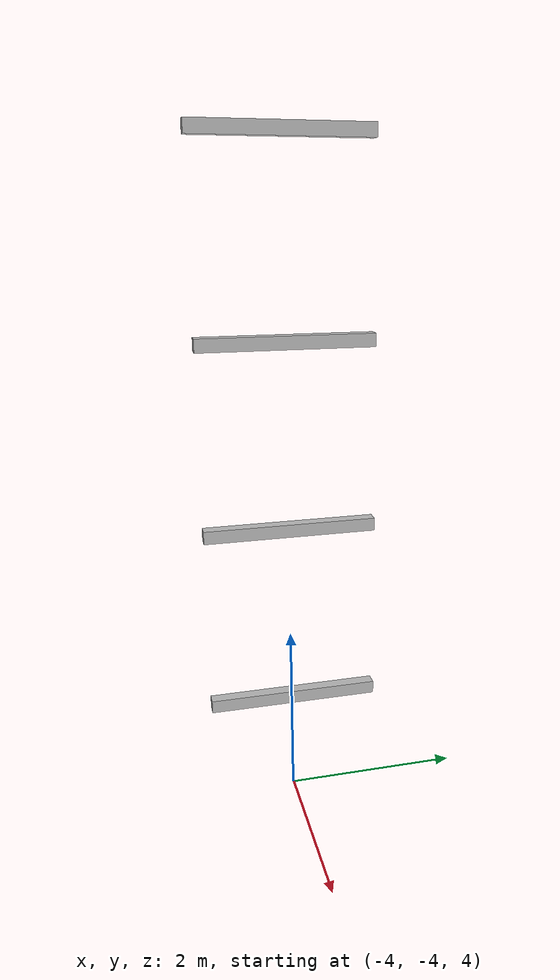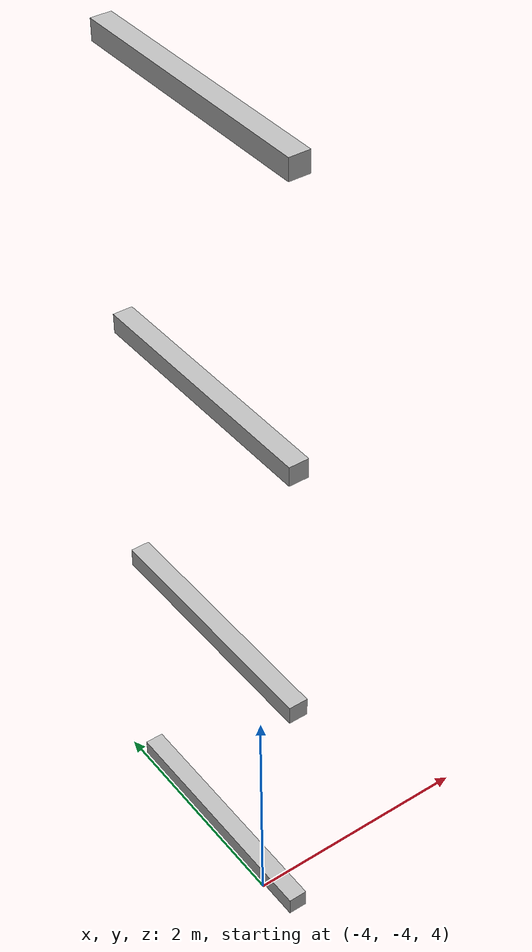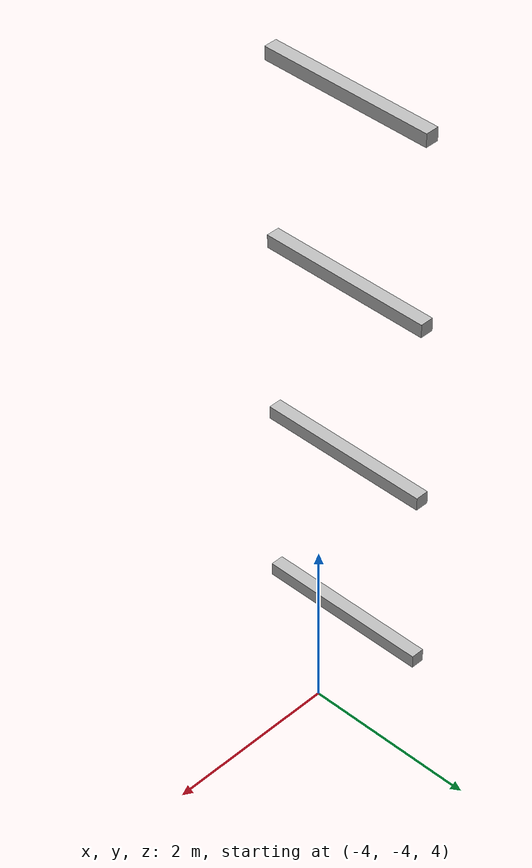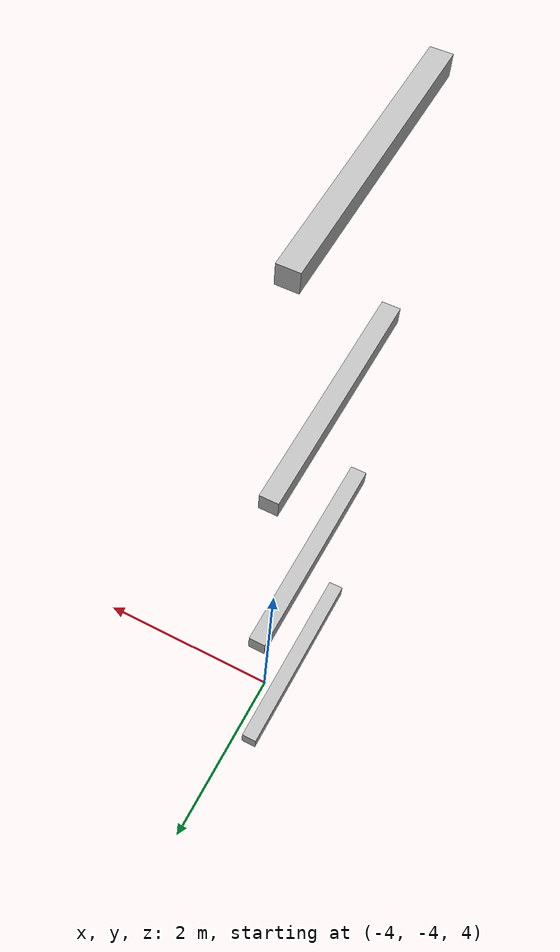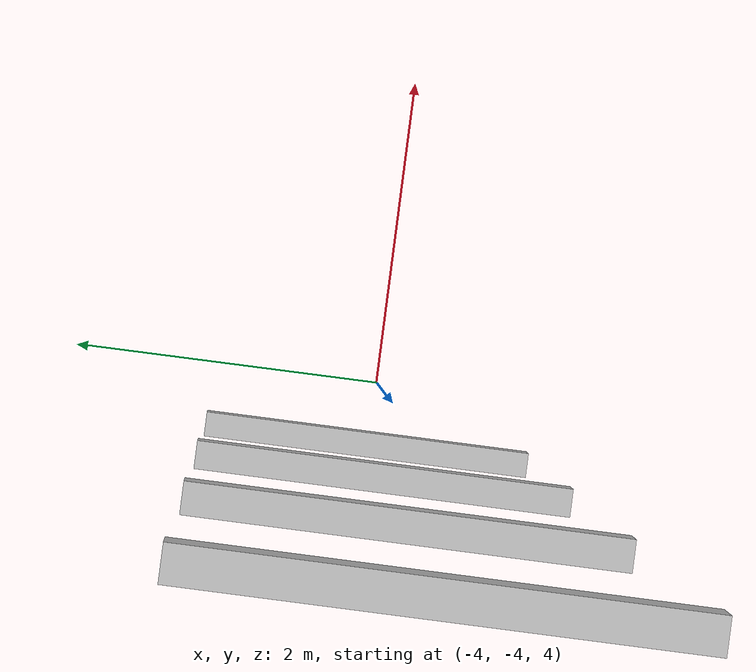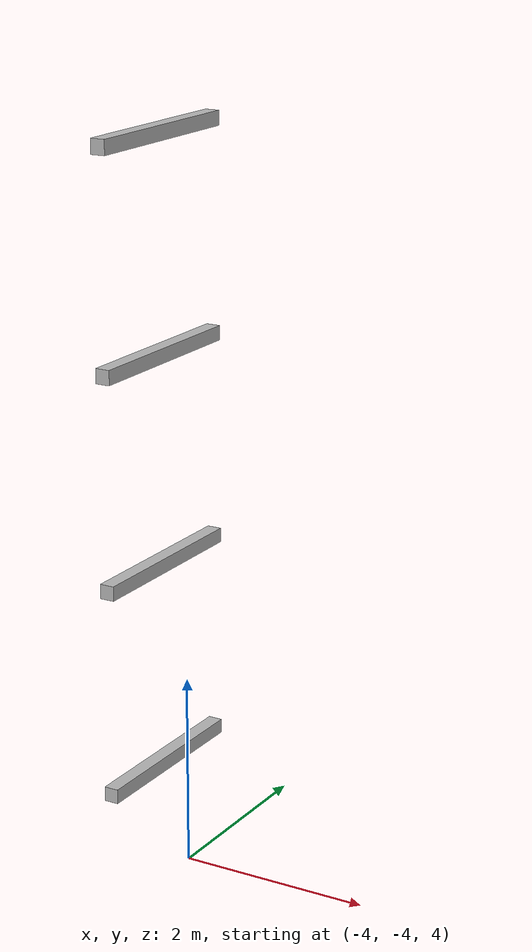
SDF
<sdf version="1.7">
 <world name="default">
  <model name="orthogonal_747_2.000.15_TS">
   <static>1</static>
   <link name="y_link_3_0_1">
    <inertial>
     <mass>1</mass>
     <inertia>
      <ixx>0.166667</ixx>
      <ixy>0</ixy>
      <ixz>0</ixz>
      <iyy>0.166667</iyy>
      <iyz>0</iyz>
      <izz>0.166667</izz>
     </inertia>
    </inertial>
    <pose>2.15 1.075 7.525 0 -0 0</pose>
    <visual name="visual_0">
     <laser_retro>2591</laser_retro>
     <geometry><box><size>0.15 1e-06 0.15</size></box></geometry>
     <material>
      <script><name>Gazebo/Grey</name><uri>file://media/materials/scripts/gazebo.material</uri></script>
      <shader type="pixel"><normal_map>__default__</normal_map></shader>
      <ambient>0.678 0.498 0.659 1</ambient>
      <diffuse>0.7 0.7 0.7 1</diffuse>
      <specular>0.01 0.01 0.01 1</specular>
      <emissive>0 0 0 1</emissive>
     </material>
     <pose>0 -1 0 0 -0 0</pose>
     <transparency>1</transparency>
    </visual>
    <visual name="visual_1">
     <laser_retro>2592</laser_retro>
     <geometry><box><size>0.15 1e-06 0.15</size></box></geometry>
     <material>
      <script><name>Gazebo/Grey</name><uri>file://media/materials/scripts/gazebo.material</uri></script>
      <shader type="pixel"><normal_map>__default__</normal_map></shader>
      <ambient>0.447 0.624 0.812 1</ambient>
      <diffuse>0.7 0.7 0.7 1</diffuse>
      <specular>0.01 0.01 0.01 1</specular>
      <emissive>0 0 0 1</emissive>
     </material>
     <pose>0 1 0 0 -0 0</pose>
     <transparency>1</transparency>
    </visual>
    <visual name="visual_2">
     <laser_retro>2593</laser_retro>
     <geometry><box><size>0.15 2 1e-06</size></box></geometry>
     <material>
      <script><name>Gazebo/Grey</name><uri>file://media/materials/scripts/gazebo.material</uri></script>
      <shader type="pixel"><normal_map>__default__</normal_map></shader>
      <ambient>0.988 0.686 0.243 1</ambient>
      <diffuse>0.7 0.7 0.7 1</diffuse>
      <specular>0.01 0.01 0.01 1</specular>
      <emissive>0 0 0 1</emissive>
     </material>
     <pose>0 0 -0.075 0 -0 0</pose>
     <transparency>1</transparency>
    </visual>
    <visual name="visual_3">
     <laser_retro>2594</laser_retro>
     <geometry><box><size>1e-06 2 0.15</size></box></geometry>
     <material>
      <script><name>Gazebo/Grey</name><uri>file://media/materials/scripts/gazebo.material</uri></script>
      <shader type="pixel"><normal_map>__default__</normal_map></shader>
      <ambient>0.988 0.914 0.31 1</ambient>
      <diffuse>0.7 0.7 0.7 1</diffuse>
      <specular>0.01 0.01 0.01 1</specular>
      <emissive>0 0 0 1</emissive>
     </material>
     <pose>0.075 0 0 0 -0 0</pose>
     <transparency>1</transparency>
    </visual>
    <visual name="visual_4">
     <laser_retro>2595</laser_retro>
     <geometry><box><size>0.15 2 1e-06</size></box></geometry>
     <material>
      <script><name>Gazebo/Grey</name><uri>file://media/materials/scripts/gazebo.material</uri></script>
      <shader type="pixel"><normal_map>__default__</normal_map></shader>
      <ambient>0.937 0.161 0.161 1</ambient>
      <diffuse>0.7 0.7 0.7 1</diffuse>
      <specular>0.01 0.01 0.01 1</specular>
      <emissive>0 0 0 1</emissive>
     </material>
     <pose>0 0 0.075 0 -0 0</pose>
     <transparency>1</transparency>
    </visual>
    <visual name="visual_5">
     <laser_retro>2596</laser_retro>
     <geometry><box><size>1e-06 2 0.15</size></box></geometry>
     <material>
      <script><name>Gazebo/Grey</name><uri>file://media/materials/scripts/gazebo.material</uri></script>
      <shader type="pixel"><normal_map>__default__</normal_map></shader>
      <ambient>0.541 0.886 0.204 1</ambient>
      <diffuse>0.7 0.7 0.7 1</diffuse>
      <specular>0.01 0.01 0.01 1</specular>
      <emissive>0 0 0 1</emissive>
     </material>
     <pose>-0.075 0 0 0 -0 0</pose>
     <transparency>1</transparency>
    </visual>
    <visual name="visual_texture">
     <geometry><box><size>0.149985 1.9998 0.149985</size></box></geometry>
     <material>
      <script>
       <uri>model://BASE_MODELS/simple_block_v2_textured/materials/scripts</uri>
       <uri>model://BASE_MODELS/simple_block_v2_textured/materials/textures</uri>
       <name>metal</name>
      </script>
     </material>
     <laser_retro>2597</laser_retro>
    </visual>
    <collision name="collision">
     <geometry><box><size>0.15 2 0.15</size></box></geometry>
     <surface>
      <friction>
       <ode><mu>1</mu><mu2>1</mu2><fdir1>0 0 0</fdir1><slip1>0</slip1><slip2>0</slip2></ode>
       <torsional>
        <coefficient>1</coefficient>
        <patch_radius>0</patch_radius>
        <surface_radius>0</surface_radius>
        <use_patch_radius>1</use_patch_radius>
        <ode><slip>0</slip></ode>
       </torsional>
      </friction>
      <bounce><restitution_coefficient>0</restitution_coefficient><threshold>1e+06</threshold></bounce>
      <contact>
       <collide_without_contact>0</collide_without_contact>
       <collide_without_contact_bitmask>1</collide_without_contact_bitmask>
       <collide_bitmask>1</collide_bitmask>
       <ode>
        <soft_cfm>0</soft_cfm>
        <soft_erp>0.2</soft_erp>
        <kp>1e+13</kp>
        <kd>1</kd>
        <max_vel>0.01</max_vel>
        <min_depth>0</min_depth>
       </ode>
       <bullet>
        <split_impulse>1</split_impulse>
        <split_impulse_penetration_threshold>-0.01</split_impulse_penetration_threshold>
        <soft_cfm>0</soft_cfm>
        <soft_erp>0.2</soft_erp>
        <kp>1e+13</kp>
        <kd>1</kd>
       </bullet>
      </contact>
     </surface>
    </collision>
   </link>
   <link name="y_link_4_0_1">
    <inertial>
     <mass>1</mass>
     <inertia>
      <ixx>0.166667</ixx>
      <ixy>0</ixy>
      <ixz>0</ixz>
      <iyy>0.166667</iyy>
      <iyz>0</iyz>
      <izz>0.166667</izz>
     </inertia>
    </inertial>
    <pose>2.15 1.075 9.675 0 -0 0</pose>
    <visual name="visual_0">
     <laser_retro>3494</laser_retro>
     <geometry><box><size>0.15 1e-06 0.15</size></box></geometry>
     <material>
      <script><name>Gazebo/Grey</name><uri>file://media/materials/scripts/gazebo.material</uri></script>
      <shader type="pixel"><normal_map>__default__</normal_map></shader>
      <ambient>0.678 0.498 0.659 1</ambient>
      <diffuse>0.7 0.7 0.7 1</diffuse>
      <specular>0.01 0.01 0.01 1</specular>
      <emissive>0 0 0 1</emissive>
     </material>
     <pose>0 -1 0 0 -0 0</pose>
     <transparency>1</transparency>
    </visual>
    <visual name="visual_1">
     <laser_retro>3495</laser_retro>
     <geometry><box><size>0.15 1e-06 0.15</size></box></geometry>
     <material>
      <script><name>Gazebo/Grey</name><uri>file://media/materials/scripts/gazebo.material</uri></script>
      <shader type="pixel"><normal_map>__default__</normal_map></shader>
      <ambient>0.447 0.624 0.812 1</ambient>
      <diffuse>0.7 0.7 0.7 1</diffuse>
      <specular>0.01 0.01 0.01 1</specular>
      <emissive>0 0 0 1</emissive>
     </material>
     <pose>0 1 0 0 -0 0</pose>
     <transparency>1</transparency>
    </visual>
    <visual name="visual_2">
     <laser_retro>3496</laser_retro>
     <geometry><box><size>0.15 2 1e-06</size></box></geometry>
     <material>
      <script><name>Gazebo/Grey</name><uri>file://media/materials/scripts/gazebo.material</uri></script>
      <shader type="pixel"><normal_map>__default__</normal_map></shader>
      <ambient>0.988 0.686 0.243 1</ambient>
      <diffuse>0.7 0.7 0.7 1</diffuse>
      <specular>0.01 0.01 0.01 1</specular>
      <emissive>0 0 0 1</emissive>
     </material>
     <pose>0 0 -0.075 0 -0 0</pose>
     <transparency>1</transparency>
    </visual>
    <visual name="visual_3">
     <laser_retro>3497</laser_retro>
     <geometry><box><size>1e-06 2 0.15</size></box></geometry>
     <material>
      <script><name>Gazebo/Grey</name><uri>file://media/materials/scripts/gazebo.material</uri></script>
      <shader type="pixel"><normal_map>__default__</normal_map></shader>
      <ambient>0.988 0.914 0.31 1</ambient>
      <diffuse>0.7 0.7 0.7 1</diffuse>
      <specular>0.01 0.01 0.01 1</specular>
      <emissive>0 0 0 1</emissive>
     </material>
     <pose>0.075 0 0 0 -0 0</pose>
     <transparency>1</transparency>
    </visual>
    <visual name="visual_4">
     <laser_retro>3498</laser_retro>
     <geometry><box><size>0.15 2 1e-06</size></box></geometry>
     <material>
      <script><name>Gazebo/Grey</name><uri>file://media/materials/scripts/gazebo.material</uri></script>
      <shader type="pixel"><normal_map>__default__</normal_map></shader>
      <ambient>0.937 0.161 0.161 1</ambient>
      <diffuse>0.7 0.7 0.7 1</diffuse>
      <specular>0.01 0.01 0.01 1</specular>
      <emissive>0 0 0 1</emissive>
     </material>
     <pose>0 0 0.075 0 -0 0</pose>
     <transparency>1</transparency>
    </visual>
    <visual name="visual_5">
     <laser_retro>3499</laser_retro>
     <geometry><box><size>1e-06 2 0.15</size></box></geometry>
     <material>
      <script><name>Gazebo/Grey</name><uri>file://media/materials/scripts/gazebo.material</uri></script>
      <shader type="pixel"><normal_map>__default__</normal_map></shader>
      <ambient>0.541 0.886 0.204 1</ambient>
      <diffuse>0.7 0.7 0.7 1</diffuse>
      <specular>0.01 0.01 0.01 1</specular>
      <emissive>0 0 0 1</emissive>
     </material>
     <pose>-0.075 0 0 0 -0 0</pose>
     <transparency>1</transparency>
    </visual>
    <visual name="visual_texture">
     <geometry><box><size>0.149985 1.9998 0.149985</size></box></geometry>
     <material>
      <script>
       <uri>model://BASE_MODELS/simple_block_v2_textured/materials/scripts</uri>
       <uri>model://BASE_MODELS/simple_block_v2_textured/materials/textures</uri>
       <name>metal</name>
      </script>
     </material>
     <laser_retro>3500</laser_retro>
    </visual>
    <collision name="collision">
     <geometry><box><size>0.15 2 0.15</size></box></geometry>
     <surface>
      <friction>
       <ode><mu>1</mu><mu2>1</mu2><fdir1>0 0 0</fdir1><slip1>0</slip1><slip2>0</slip2></ode>
       <torsional>
        <coefficient>1</coefficient>
        <patch_radius>0</patch_radius>
        <surface_radius>0</surface_radius>
        <use_patch_radius>1</use_patch_radius>
        <ode><slip>0</slip></ode>
       </torsional>
      </friction>
      <bounce><restitution_coefficient>0</restitution_coefficient><threshold>1e+06</threshold></bounce>
      <contact>
       <collide_without_contact>0</collide_without_contact>
       <collide_without_contact_bitmask>1</collide_without_contact_bitmask>
       <collide_bitmask>1</collide_bitmask>
       <ode>
        <soft_cfm>0</soft_cfm>
        <soft_erp>0.2</soft_erp>
        <kp>1e+13</kp>
        <kd>1</kd>
        <max_vel>0.01</max_vel>
        <min_depth>0</min_depth>
       </ode>
       <bullet>
        <split_impulse>1</split_impulse>
        <split_impulse_penetration_threshold>-0.01</split_impulse_penetration_threshold>
        <soft_cfm>0</soft_cfm>
        <soft_erp>0.2</soft_erp>
        <kp>1e+13</kp>
        <kd>1</kd>
       </bullet>
      </contact>
     </surface>
    </collision>
   </link>
   <link name="y_link_5_0_1">
    <inertial>
     <mass>1</mass>
     <inertia>
      <ixx>0.166667</ixx>
      <ixy>0</ixy>
      <ixz>0</ixz>
      <iyy>0.166667</iyy>
      <iyz>0</iyz>
      <izz>0.166667</izz>
     </inertia>
    </inertial>
    <pose>2.15 1.075 11.825 0 -0 0</pose>
    <visual name="visual_0">
     <laser_retro>4397</laser_retro>
     <geometry><box><size>0.15 1e-06 0.15</size></box></geometry>
     <material>
      <script><name>Gazebo/Grey</name><uri>file://media/materials/scripts/gazebo.material</uri></script>
      <shader type="pixel"><normal_map>__default__</normal_map></shader>
      <ambient>0.678 0.498 0.659 1</ambient>
      <diffuse>0.7 0.7 0.7 1</diffuse>
      <specular>0.01 0.01 0.01 1</specular>
      <emissive>0 0 0 1</emissive>
     </material>
     <pose>0 -1 0 0 -0 0</pose>
     <transparency>1</transparency>
    </visual>
    <visual name="visual_1">
     <laser_retro>4398</laser_retro>
     <geometry><box><size>0.15 1e-06 0.15</size></box></geometry>
     <material>
      <script><name>Gazebo/Grey</name><uri>file://media/materials/scripts/gazebo.material</uri></script>
      <shader type="pixel"><normal_map>__default__</normal_map></shader>
      <ambient>0.447 0.624 0.812 1</ambient>
      <diffuse>0.7 0.7 0.7 1</diffuse>
      <specular>0.01 0.01 0.01 1</specular>
      <emissive>0 0 0 1</emissive>
     </material>
     <pose>0 1 0 0 -0 0</pose>
     <transparency>1</transparency>
    </visual>
    <visual name="visual_2">
     <laser_retro>4399</laser_retro>
     <geometry><box><size>0.15 2 1e-06</size></box></geometry>
     <material>
      <script><name>Gazebo/Grey</name><uri>file://media/materials/scripts/gazebo.material</uri></script>
      <shader type="pixel"><normal_map>__default__</normal_map></shader>
      <ambient>0.988 0.686 0.243 1</ambient>
      <diffuse>0.7 0.7 0.7 1</diffuse>
      <specular>0.01 0.01 0.01 1</specular>
      <emissive>0 0 0 1</emissive>
     </material>
     <pose>0 0 -0.075 0 -0 0</pose>
     <transparency>1</transparency>
    </visual>
    <visual name="visual_3">
     <laser_retro>4400</laser_retro>
     <geometry><box><size>1e-06 2 0.15</size></box></geometry>
     <material>
      <script><name>Gazebo/Grey</name><uri>file://media/materials/scripts/gazebo.material</uri></script>
      <shader type="pixel"><normal_map>__default__</normal_map></shader>
      <ambient>0.988 0.914 0.31 1</ambient>
      <diffuse>0.7 0.7 0.7 1</diffuse>
      <specular>0.01 0.01 0.01 1</specular>
      <emissive>0 0 0 1</emissive>
     </material>
     <pose>0.075 0 0 0 -0 0</pose>
     <transparency>1</transparency>
    </visual>
    <visual name="visual_4">
     <laser_retro>4401</laser_retro>
     <geometry><box><size>0.15 2 1e-06</size></box></geometry>
     <material>
      <script><name>Gazebo/Grey</name><uri>file://media/materials/scripts/gazebo.material</uri></script>
      <shader type="pixel"><normal_map>__default__</normal_map></shader>
      <ambient>0.937 0.161 0.161 1</ambient>
      <diffuse>0.7 0.7 0.7 1</diffuse>
      <specular>0.01 0.01 0.01 1</specular>
      <emissive>0 0 0 1</emissive>
     </material>
     <pose>0 0 0.075 0 -0 0</pose>
     <transparency>1</transparency>
    </visual>
    <visual name="visual_5">
     <laser_retro>4402</laser_retro>
     <geometry><box><size>1e-06 2 0.15</size></box></geometry>
     <material>
      <script><name>Gazebo/Grey</name><uri>file://media/materials/scripts/gazebo.material</uri></script>
      <shader type="pixel"><normal_map>__default__</normal_map></shader>
      <ambient>0.541 0.886 0.204 1</ambient>
      <diffuse>0.7 0.7 0.7 1</diffuse>
      <specular>0.01 0.01 0.01 1</specular>
      <emissive>0 0 0 1</emissive>
     </material>
     <pose>-0.075 0 0 0 -0 0</pose>
     <transparency>1</transparency>
    </visual>
    <visual name="visual_texture">
     <geometry><box><size>0.149985 1.9998 0.149985</size></box></geometry>
     <material>
      <script>
       <uri>model://BASE_MODELS/simple_block_v2_textured/materials/scripts</uri>
       <uri>model://BASE_MODELS/simple_block_v2_textured/materials/textures</uri>
       <name>metal</name>
      </script>
     </material>
     <laser_retro>4403</laser_retro>
    </visual>
    <collision name="collision">
     <geometry><box><size>0.15 2 0.15</size></box></geometry>
     <surface>
      <friction>
       <ode><mu>1</mu><mu2>1</mu2><fdir1>0 0 0</fdir1><slip1>0</slip1><slip2>0</slip2></ode>
       <torsional>
        <coefficient>1</coefficient>
        <patch_radius>0</patch_radius>
        <surface_radius>0</surface_radius>
        <use_patch_radius>1</use_patch_radius>
        <ode><slip>0</slip></ode>
       </torsional>
      </friction>
      <bounce><restitution_coefficient>0</restitution_coefficient><threshold>1e+06</threshold></bounce>
      <contact>
       <collide_without_contact>0</collide_without_contact>
       <collide_without_contact_bitmask>1</collide_without_contact_bitmask>
       <collide_bitmask>1</collide_bitmask>
       <ode>
        <soft_cfm>0</soft_cfm>
        <soft_erp>0.2</soft_erp>
        <kp>1e+13</kp>
        <kd>1</kd>
        <max_vel>0.01</max_vel>
        <min_depth>0</min_depth>
       </ode>
       <bullet>
        <split_impulse>1</split_impulse>
        <split_impulse_penetration_threshold>-0.01</split_impulse_penetration_threshold>
        <soft_cfm>0</soft_cfm>
        <soft_erp>0.2</soft_erp>
        <kp>1e+13</kp>
        <kd>1</kd>
       </bullet>
      </contact>
     </surface>
    </collision>
   </link>
   <link name="y_link_6_0_1">
    <inertial>
     <mass>1</mass>
     <inertia>
      <ixx>0.166667</ixx>
      <ixy>0</ixy>
      <ixz>0</ixz>
      <iyy>0.166667</iyy>
      <iyz>0</iyz>
      <izz>0.166667</izz>
     </inertia>
    </inertial>
    <pose>2.15 1.075 13.975 0 -0 0</pose>
    <visual name="visual_0">
     <laser_retro>5300</laser_retro>
     <geometry><box><size>0.15 1e-06 0.15</size></box></geometry>
     <material>
      <script><name>Gazebo/Grey</name><uri>file://media/materials/scripts/gazebo.material</uri></script>
      <shader type="pixel"><normal_map>__default__</normal_map></shader>
      <ambient>0.678 0.498 0.659 1</ambient>
      <diffuse>0.7 0.7 0.7 1</diffuse>
      <specular>0.01 0.01 0.01 1</specular>
      <emissive>0 0 0 1</emissive>
     </material>
     <pose>0 -1 0 0 -0 0</pose>
     <transparency>1</transparency>
    </visual>
    <visual name="visual_1">
     <laser_retro>5301</laser_retro>
     <geometry><box><size>0.15 1e-06 0.15</size></box></geometry>
     <material>
      <script><name>Gazebo/Grey</name><uri>file://media/materials/scripts/gazebo.material</uri></script>
      <shader type="pixel"><normal_map>__default__</normal_map></shader>
      <ambient>0.447 0.624 0.812 1</ambient>
      <diffuse>0.7 0.7 0.7 1</diffuse>
      <specular>0.01 0.01 0.01 1</specular>
      <emissive>0 0 0 1</emissive>
     </material>
     <pose>0 1 0 0 -0 0</pose>
     <transparency>1</transparency>
    </visual>
    <visual name="visual_2">
     <laser_retro>5302</laser_retro>
     <geometry><box><size>0.15 2 1e-06</size></box></geometry>
     <material>
      <script><name>Gazebo/Grey</name><uri>file://media/materials/scripts/gazebo.material</uri></script>
      <shader type="pixel"><normal_map>__default__</normal_map></shader>
      <ambient>0.988 0.686 0.243 1</ambient>
      <diffuse>0.7 0.7 0.7 1</diffuse>
      <specular>0.01 0.01 0.01 1</specular>
      <emissive>0 0 0 1</emissive>
     </material>
     <pose>0 0 -0.075 0 -0 0</pose>
     <transparency>1</transparency>
    </visual>
    <visual name="visual_3">
     <laser_retro>5303</laser_retro>
     <geometry><box><size>1e-06 2 0.15</size></box></geometry>
     <material>
      <script><name>Gazebo/Grey</name><uri>file://media/materials/scripts/gazebo.material</uri></script>
      <shader type="pixel"><normal_map>__default__</normal_map></shader>
      <ambient>0.988 0.914 0.31 1</ambient>
      <diffuse>0.7 0.7 0.7 1</diffuse>
      <specular>0.01 0.01 0.01 1</specular>
      <emissive>0 0 0 1</emissive>
     </material>
     <pose>0.075 0 0 0 -0 0</pose>
     <transparency>1</transparency>
    </visual>
    <visual name="visual_4">
     <laser_retro>5304</laser_retro>
     <geometry><box><size>0.15 2 1e-06</size></box></geometry>
     <material>
      <script><name>Gazebo/Grey</name><uri>file://media/materials/scripts/gazebo.material</uri></script>
      <shader type="pixel"><normal_map>__default__</normal_map></shader>
      <ambient>0.937 0.161 0.161 1</ambient>
      <diffuse>0.7 0.7 0.7 1</diffuse>
      <specular>0.01 0.01 0.01 1</specular>
      <emissive>0 0 0 1</emissive>
     </material>
     <pose>0 0 0.075 0 -0 0</pose>
     <transparency>1</transparency>
    </visual>
    <visual name="visual_5">
     <laser_retro>5305</laser_retro>
     <geometry><box><size>1e-06 2 0.15</size></box></geometry>
     <material>
      <script><name>Gazebo/Grey</name><uri>file://media/materials/scripts/gazebo.material</uri></script>
      <shader type="pixel"><normal_map>__default__</normal_map></shader>
      <ambient>0.541 0.886 0.204 1</ambient>
      <diffuse>0.7 0.7 0.7 1</diffuse>
      <specular>0.01 0.01 0.01 1</specular>
      <emissive>0 0 0 1</emissive>
     </material>
     <pose>-0.075 0 0 0 -0 0</pose>
     <transparency>1</transparency>
    </visual>
    <visual name="visual_texture">
     <geometry><box><size>0.149985 1.9998 0.149985</size></box></geometry>
     <material>
      <script>
       <uri>model://BASE_MODELS/simple_block_v2_textured/materials/scripts</uri>
       <uri>model://BASE_MODELS/simple_block_v2_textured/materials/textures</uri>
       <name>metal</name>
      </script>
     </material>
     <laser_retro>5306</laser_retro>
    </visual>
    <collision name="collision">
     <geometry><box><size>0.15 2 0.15</size></box></geometry>
     <surface>
      <friction>
       <ode><mu>1</mu><mu2>1</mu2><fdir1>0 0 0</fdir1><slip1>0</slip1><slip2>0</slip2></ode>
       <torsional>
        <coefficient>1</coefficient>
        <patch_radius>0</patch_radius>
        <surface_radius>0</surface_radius>
        <use_patch_radius>1</use_patch_radius>
        <ode><slip>0</slip></ode>
       </torsional>
      </friction>
      <bounce><restitution_coefficient>0</restitution_coefficient><threshold>1e+06</threshold></bounce>
      <contact>
       <collide_without_contact>0</collide_without_contact>
       <collide_without_contact_bitmask>1</collide_without_contact_bitmask>
       <collide_bitmask>1</collide_bitmask>
       <ode>
        <soft_cfm>0</soft_cfm>
        <soft_erp>0.2</soft_erp>
        <kp>1e+13</kp>
        <kd>1</kd>
        <max_vel>0.01</max_vel>
        <min_depth>0</min_depth>
       </ode>
       <bullet>
        <split_impulse>1</split_impulse>
        <split_impulse_penetration_threshold>-0.01</split_impulse_penetration_threshold>
        <soft_cfm>0</soft_cfm>
        <soft_erp>0.2</soft_erp>
        <kp>1e+13</kp>
        <kd>1</kd>
       </bullet>
      </contact>
     </surface>
    </collision>
   </link>
   <pose>-6.47624 -5 -2.5 0 -0 0</pose>
  </model>
 </world>
</sdf>
